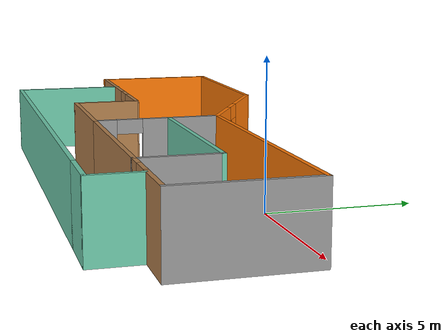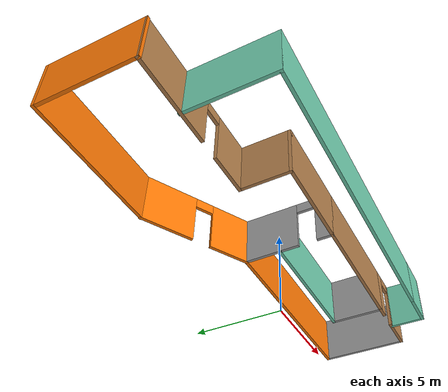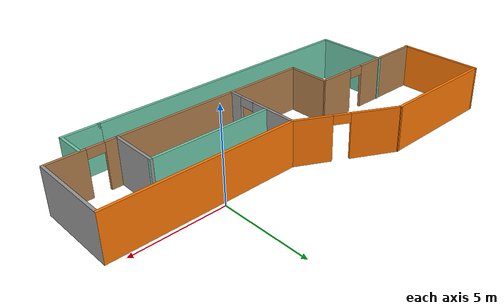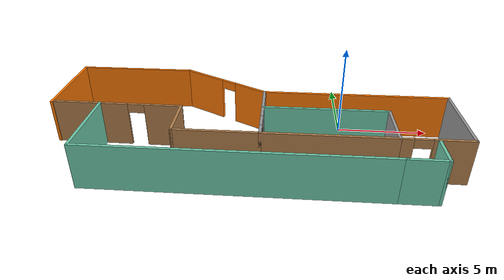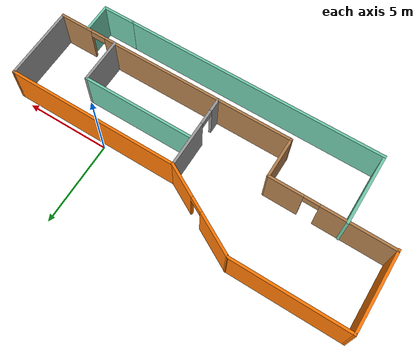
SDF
<?xml version='1.0'?>
<sdf version='1.6'>
  <model name='mybuilding'>
    <pose frame=''>-5.02052 -1.98139 0 0 -0 0</pose>
    <link name='Wall_0'>
      <collision name='Wall_0_Collision'>
        <geometry>
          <box>
            <size>4.75 0.15 2.5</size>
          </box>
        </geometry>
        <pose frame=''>0 0 1.25 0 -0 0</pose>
      </collision>
      <visual name='Wall_0_Visual'>
        <pose frame=''>0 0 1.25 0 -0 0</pose>
        <geometry>
          <box>
            <size>4.75 0.15 2.5</size>
          </box>
        </geometry>
        <material>
          <script>
            <uri>file://media/materials/scripts/gazebo.material</uri>
            <name>Gazebo/Grey</name>
          </script>
          <ambient>0.996078 0.47451 0.0196078 1</ambient>
        </material>
        <meta>
          <layer>0</layer>
        </meta>
      </visual>
      <pose frame=''>-10.7747 2.01571 0 0 0 -1.5708</pose>
    </link>
    <link name='Wall_1'>
      <pose frame=''>-7.22475 -0.28429 0 0 0 -0.008617</pose>
      <visual name='Wall_1_Visual_0'>
        <pose frame=''>-1.48771 0 1.25 0 -0 0</pose>
        <geometry>
          <box>
            <size>4.27457 0.15 2.5</size>
          </box>
        </geometry>
        <material>
          <script>
            <uri>file://media/materials/scripts/gazebo.material</uri>
            <name>Gazebo/Wood</name>
          </script>
          <ambient>1 1 1 1</ambient>
        </material>
        <meta>
          <layer>0</layer>
        </meta>
      </visual>
      <collision name='Wall_1_Collision_0'>
        <geometry>
          <box>
            <size>4.27457 0.15 2.5</size>
          </box>
        </geometry>
        <pose frame=''>-1.48771 0 1.25 0 -0 0</pose>
      </collision>
      <visual name='Wall_1_Visual_1'>
        <pose frame=''>2.58729 0 1.25 0 -0 0</pose>
        <geometry>
          <box>
            <size>2.07543 0.15 2.5</size>
          </box>
        </geometry>
        <material>
          <script>
            <uri>file://media/materials/scripts/gazebo.material</uri>
            <name>Gazebo/Wood</name>
          </script>
          <ambient>1 1 1 1</ambient>
        </material>
        <meta>
          <layer>0</layer>
        </meta>
      </visual>
      <collision name='Wall_1_Collision_1'>
        <geometry>
          <box>
            <size>2.07543 0.15 2.5</size>
          </box>
        </geometry>
        <pose frame=''>2.58729 0 1.25 0 -0 0</pose>
      </collision>
      <visual name='Wall_1_Visual_2'>
        <pose frame=''>1.09957 0 2.25 0 -0 0</pose>
        <geometry>
          <box>
            <size>0.9 0.15 0.5</size>
          </box>
        </geometry>
        <material>
          <script>
            <uri>file://media/materials/scripts/gazebo.material</uri>
            <name>Gazebo/Wood</name>
          </script>
          <ambient>1 1 1 1</ambient>
        </material>
        <meta>
          <layer>0</layer>
        </meta>
      </visual>
      <collision name='Wall_1_Collision_2'>
        <geometry>
          <box>
            <size>0.9 0.15 0.5</size>
          </box>
        </geometry>
        <pose frame=''>1.09957 0 2.25 0 -0 0</pose>
      </collision>
    </link>
    <link name='Wall_10'>
      <collision name='Wall_10_Collision'>
        <geometry>
          <box>
            <size>6.75 0.15 2.5</size>
          </box>
        </geometry>
        <pose frame=''>0 0 1.25 0 -0 0</pose>
      </collision>
      <visual name='Wall_10_Visual'>
        <pose frame=''>0 0 1.25 0 -0 0</pose>
        <geometry>
          <box>
            <size>6.75 0.15 2.5</size>
          </box>
        </geometry>
        <material>
          <script>
            <uri>file://media/materials/scripts/gazebo.material</uri>
            <name>Gazebo/Wood</name>
          </script>
          <ambient>1 1 1 1</ambient>
        </material>
        <meta>
          <layer>0</layer>
        </meta>
      </visual>
      <pose frame=''>3.97526 -2.66488 0 0 -0 0</pose>
    </link>
    <link name='Wall_11'>
      <collision name='Wall_11_Collision'>
        <geometry>
          <box>
            <size>2.75 0.15 2.5</size>
          </box>
        </geometry>
        <pose frame=''>0 0 1.25 0 -0 0</pose>
      </collision>
      <visual name='Wall_11_Visual'>
        <pose frame=''>0 0 1.25 0 -0 0</pose>
        <geometry>
          <box>
            <size>2.75 0.15 2.5</size>
          </box>
        </geometry>
        <material>
          <script>
            <uri>file://media/materials/scripts/gazebo.material</uri>
            <name>Gazebo/Grey</name>
          </script>
          <ambient>1 1 1 1</ambient>
        </material>
        <meta>
          <layer>0</layer>
        </meta>
      </visual>
      <pose frame=''>7.27525 -1.36488 0 0 -0 1.5708</pose>
    </link>
    <link name='Wall_12'>
      <collision name='Wall_12_Collision'>
        <geometry>
          <box>
            <size>6.75 0.15 2.5</size>
          </box>
        </geometry>
        <pose frame=''>0 0 1.25 0 -0 0</pose>
      </collision>
      <visual name='Wall_12_Visual'>
        <pose frame=''>0 0 1.25 0 -0 0</pose>
        <geometry>
          <box>
            <size>6.75 0.15 2.5</size>
          </box>
        </geometry>
        <material>
          <script>
            <uri>file://media/materials/scripts/gazebo.material</uri>
            <name>Gazebo/Grey</name>
          </script>
          <ambient>0.435294 0.796078 0.67451 1</ambient>
        </material>
        <meta>
          <layer>0</layer>
        </meta>
      </visual>
      <pose frame=''>3.97526 -0.064881 0 0 -0 3.14159</pose>
    </link>
    <link name='Wall_14'>
      <collision name='Wall_14_Collision'>
        <geometry>
          <box>
            <size>10.25 0.15 2.5</size>
          </box>
        </geometry>
        <pose frame=''>0 0 1.25 0 -0 0</pose>
      </collision>
      <visual name='Wall_14_Visual'>
        <pose frame=''>0 0 1.25 0 -0 0</pose>
        <geometry>
          <box>
            <size>10.25 0.15 2.5</size>
          </box>
        </geometry>
        <material>
          <script>
            <uri>file://media/materials/scripts/gazebo.material</uri>
            <name>Gazebo/Grey</name>
          </script>
          <ambient>0.996078 0.47451 0.0196078 1</ambient>
        </material>
        <meta>
          <layer>0</layer>
        </meta>
      </visual>
      <pose frame=''>5.72526 1.68512 0 0 -0 0</pose>
    </link>
    <link name='Wall_15'>
      <collision name='Wall_15_Collision'>
        <geometry>
          <box>
            <size>4.5 0.15 2.5</size>
          </box>
        </geometry>
        <pose frame=''>0 0 1.25 0 -0 0</pose>
      </collision>
      <visual name='Wall_15_Visual'>
        <pose frame=''>0 0 1.25 0 -0 0</pose>
        <geometry>
          <box>
            <size>4.5 0.15 2.5</size>
          </box>
        </geometry>
        <material>
          <script>
            <uri>file://media/materials/scripts/gazebo.material</uri>
            <name>Gazebo/Grey</name>
          </script>
          <ambient>1 1 1 1</ambient>
        </material>
        <meta>
          <layer>0</layer>
        </meta>
      </visual>
      <pose frame=''>10.7753 -0.489881 0 0 0 -1.5708</pose>
    </link>
    <link name='Wall_16'>
      <pose frame=''>9.02525 -2.66488 0 0 -0 3.14159</pose>
      <visual name='Wall_16_Visual_0'>
        <pose frame=''>-0.812242 0 1.25 0 -0 0</pose>
        <geometry>
          <box>
            <size>2.02552 0.15 2.5</size>
          </box>
        </geometry>
        <material>
          <script>
            <uri>file://media/materials/scripts/gazebo.material</uri>
            <name>Gazebo/Wood</name>
          </script>
          <ambient>1 1 1 1</ambient>
        </material>
        <meta>
          <layer>0</layer>
        </meta>
      </visual>
      <collision name='Wall_16_Collision_0'>
        <geometry>
          <box>
            <size>2.02552 0.15 2.5</size>
          </box>
        </geometry>
        <pose frame=''>-0.812242 0 1.25 0 -0 0</pose>
      </collision>
      <visual name='Wall_16_Visual_1'>
        <pose frame=''>1.46276 0 1.25 0 -0 0</pose>
        <geometry>
          <box>
            <size>0.724483 0.15 2.5</size>
          </box>
        </geometry>
        <material>
          <script>
            <uri>file://media/materials/scripts/gazebo.material</uri>
            <name>Gazebo/Wood</name>
          </script>
          <ambient>1 1 1 1</ambient>
        </material>
        <meta>
          <layer>0</layer>
        </meta>
      </visual>
      <collision name='Wall_16_Collision_1'>
        <geometry>
          <box>
            <size>0.724483 0.15 2.5</size>
          </box>
        </geometry>
        <pose frame=''>1.46276 0 1.25 0 -0 0</pose>
      </collision>
      <visual name='Wall_16_Visual_2'>
        <pose frame=''>0.650517 0 2.25 0 -0 0</pose>
        <geometry>
          <box>
            <size>0.9 0.15 0.5</size>
          </box>
        </geometry>
        <material>
          <script>
            <uri>file://media/materials/scripts/gazebo.material</uri>
            <name>Gazebo/Wood</name>
          </script>
          <ambient>1 1 1 1</ambient>
        </material>
        <meta>
          <layer>0</layer>
        </meta>
      </visual>
      <collision name='Wall_16_Collision_2'>
        <geometry>
          <box>
            <size>0.9 0.15 0.5</size>
          </box>
        </geometry>
        <pose frame=''>0.650517 0 2.25 0 -0 0</pose>
      </collision>
    </link>
    <link name='Wall_18'>
      <collision name='Wall_18_Collision'>
        <geometry>
          <box>
            <size>4.25 0.15 2.5</size>
          </box>
        </geometry>
        <pose frame=''>0 0 1.25 0 -0 0</pose>
      </collision>
      <visual name='Wall_18_Visual'>
        <pose frame=''>0 0 1.25 0 -0 0</pose>
        <geometry>
          <box>
            <size>4.25 0.15 2.5</size>
          </box>
        </geometry>
        <material>
          <script>
            <uri>file://media/materials/scripts/gazebo.material</uri>
            <name>Gazebo/Grey</name>
          </script>
          <ambient>0.435294 0.796078 0.67451 1</ambient>
        </material>
        <meta>
          <layer>0</layer>
        </meta>
      </visual>
      <pose frame=''>-8.11339 -2.29223 0 0 0 -1.5708</pose>
    </link>
    <link name='Wall_19'>
      <collision name='Wall_19_Collision'>
        <geometry>
          <box>
            <size>15.5 0.15 2.5</size>
          </box>
        </geometry>
        <pose frame=''>0 0 1.25 0 -0 0</pose>
      </collision>
      <visual name='Wall_19_Visual'>
        <pose frame=''>0 0 1.25 0 -0 0</pose>
        <geometry>
          <box>
            <size>15.5 0.15 2.5</size>
          </box>
        </geometry>
        <material>
          <script>
            <uri>file://media/materials/scripts/gazebo.material</uri>
            <name>Gazebo/Grey</name>
          </script>
          <ambient>0.435294 0.796078 0.67451 1</ambient>
        </material>
        <meta>
          <layer>0</layer>
        </meta>
      </visual>
      <pose frame=''>-0.438395 -4.34223 0 0 -0 0</pose>
    </link>
    <link name='Wall_2'>
      <collision name='Wall_2_Collision'>
        <geometry>
          <box>
            <size>2.5 0.15 2.5</size>
          </box>
        </geometry>
        <pose frame=''>0 0 1.25 0 -0 0</pose>
      </collision>
      <visual name='Wall_2_Visual'>
        <pose frame=''>0 0 1.25 0 -0 0</pose>
        <geometry>
          <box>
            <size>2.5 0.15 2.5</size>
          </box>
        </geometry>
        <material>
          <script>
            <uri>file://media/materials/scripts/gazebo.material</uri>
            <name>Gazebo/Wood</name>
          </script>
          <ambient>1 1 1 1</ambient>
        </material>
        <meta>
          <layer>0</layer>
        </meta>
      </visual>
      <pose frame=''>-3.67474 -1.48988 0 0 0 -1.5708</pose>
    </link>
    <link name='Wall_20'>
      <collision name='Wall_20_Collision'>
        <geometry>
          <box>
            <size>2 0.15 2.5</size>
          </box>
        </geometry>
        <pose frame=''>0 0 1.25 0 -0 0</pose>
      </collision>
      <visual name='Wall_20_Visual'>
        <pose frame=''>0 0 1.25 0 -0 0</pose>
        <geometry>
          <box>
            <size>2 0.15 2.5</size>
          </box>
        </geometry>
        <material>
          <script>
            <uri>file://media/materials/scripts/gazebo.material</uri>
            <name>Gazebo/Grey</name>
          </script>
          <ambient>0.435294 0.796078 0.67451 1</ambient>
        </material>
        <meta>
          <layer>0</layer>
        </meta>
      </visual>
      <pose frame=''>8.1616 -4.34223 0 0 -0 0</pose>
    </link>
    <link name='Wall_21'>
      <collision name='Wall_21_Collision'>
        <geometry>
          <box>
            <size>1.75 0.15 2.5</size>
          </box>
        </geometry>
        <pose frame=''>0 0 1.25 0 -0 0</pose>
      </collision>
      <visual name='Wall_21_Visual'>
        <pose frame=''>0 0 1.25 0 -0 0</pose>
        <geometry>
          <box>
            <size>1.75 0.15 2.5</size>
          </box>
        </geometry>
        <material>
          <script>
            <uri>file://media/materials/scripts/gazebo.material</uri>
            <name>Gazebo/Grey</name>
          </script>
          <ambient>0.435294 0.796078 0.67451 1</ambient>
        </material>
        <meta>
          <layer>0</layer>
        </meta>
      </visual>
      <pose frame=''>9.08661 -3.54223 0 0 -0 1.5708</pose>
    </link>
    <link name='Wall_3'>
      <collision name='Wall_3_Collision'>
        <geometry>
          <box>
            <size>4.5 0.15 2.5</size>
          </box>
        </geometry>
        <pose frame=''>0 0 1.25 0 -0 0</pose>
      </collision>
      <visual name='Wall_3_Visual'>
        <pose frame=''>0 0 1.25 0 -0 0</pose>
        <geometry>
          <box>
            <size>4.5 0.15 2.5</size>
          </box>
        </geometry>
        <material>
          <script>
            <uri>file://media/materials/scripts/gazebo.material</uri>
            <name>Gazebo/Wood</name>
          </script>
          <ambient>1 1 1 1</ambient>
        </material>
        <meta>
          <layer>0</layer>
        </meta>
      </visual>
      <pose frame=''>-1.49975 -2.66488 0 0 -0 0</pose>
    </link>
    <link name='Wall_4'>
      <pose frame=''>0.675256 -0.489881 0 0 -0 1.5708</pose>
      <visual name='Wall_4_Visual_0'>
        <pose frame=''>-1.83798 0 1.25 0 -0 0</pose>
        <geometry>
          <box>
            <size>0.824037 0.15 2.5</size>
          </box>
        </geometry>
        <material>
          <script>
            <uri>file://media/materials/scripts/gazebo.material</uri>
            <name>Gazebo/Grey</name>
          </script>
          <ambient>1 1 1 1</ambient>
        </material>
        <meta>
          <layer>0</layer>
        </meta>
      </visual>
      <collision name='Wall_4_Collision_0'>
        <geometry>
          <box>
            <size>0.824037 0.15 2.5</size>
          </box>
        </geometry>
        <pose frame=''>-1.83798 0 1.25 0 -0 0</pose>
      </collision>
      <visual name='Wall_4_Visual_1'>
        <pose frame=''>0.862019 0 1.25 0 -0 0</pose>
        <geometry>
          <box>
            <size>2.77596 0.15 2.5</size>
          </box>
        </geometry>
        <material>
          <script>
            <uri>file://media/materials/scripts/gazebo.material</uri>
            <name>Gazebo/Grey</name>
          </script>
          <ambient>1 1 1 1</ambient>
        </material>
        <meta>
          <layer>0</layer>
        </meta>
      </visual>
      <collision name='Wall_4_Collision_1'>
        <geometry>
          <box>
            <size>2.77596 0.15 2.5</size>
          </box>
        </geometry>
        <pose frame=''>0.862019 0 1.25 0 -0 0</pose>
      </collision>
      <visual name='Wall_4_Visual_2'>
        <pose frame=''>-0.975963 0 2.25 0 -0 0</pose>
        <geometry>
          <box>
            <size>0.9 0.15 0.5</size>
          </box>
        </geometry>
        <material>
          <script>
            <uri>file://media/materials/scripts/gazebo.material</uri>
            <name>Gazebo/Grey</name>
          </script>
          <ambient>1 1 1 1</ambient>
        </material>
        <meta>
          <layer>0</layer>
        </meta>
      </visual>
      <collision name='Wall_4_Collision_2'>
        <geometry>
          <box>
            <size>0.9 0.15 0.5</size>
          </box>
        </geometry>
        <pose frame=''>-0.975963 0 2.25 0 -0 0</pose>
      </collision>
    </link>
    <link name='Wall_5'>
      <pose frame=''>-1.71902 3.00026 0 0 -0 2.6393</pose>
      <visual name='Wall_5_Visual_0'>
        <pose frame=''>-1.76931 0 1.25 0 -0 0</pose>
        <geometry>
          <box>
            <size>2.07477 0.15 2.5</size>
          </box>
        </geometry>
        <material>
          <script>
            <uri>file://media/materials/scripts/gazebo.material</uri>
            <name>Gazebo/Grey</name>
          </script>
          <ambient>0.996078 0.47451 0.0196078 1</ambient>
        </material>
        <meta>
          <layer>0</layer>
        </meta>
      </visual>
      <collision name='Wall_5_Collision_0'>
        <geometry>
          <box>
            <size>2.07477 0.15 2.5</size>
          </box>
        </geometry>
        <pose frame=''>-1.76931 0 1.25 0 -0 0</pose>
      </collision>
      <visual name='Wall_5_Visual_1'>
        <pose frame=''>1.48739 0 1.25 0 -0 0</pose>
        <geometry>
          <box>
            <size>2.63861 0.15 2.5</size>
          </box>
        </geometry>
        <material>
          <script>
            <uri>file://media/materials/scripts/gazebo.material</uri>
            <name>Gazebo/Grey</name>
          </script>
          <ambient>0.996078 0.47451 0.0196078 1</ambient>
        </material>
        <meta>
          <layer>0</layer>
        </meta>
      </visual>
      <collision name='Wall_5_Collision_1'>
        <geometry>
          <box>
            <size>2.63861 0.15 2.5</size>
          </box>
        </geometry>
        <pose frame=''>1.48739 0 1.25 0 -0 0</pose>
      </collision>
      <visual name='Wall_5_Visual_2'>
        <pose frame=''>-0.281919 0 2.25 0 -0 0</pose>
        <geometry>
          <box>
            <size>0.9 0.15 0.5</size>
          </box>
        </geometry>
        <material>
          <script>
            <uri>file://media/materials/scripts/gazebo.material</uri>
            <name>Gazebo/Grey</name>
          </script>
          <ambient>0.996078 0.47451 0.0196078 1</ambient>
        </material>
        <meta>
          <layer>0</layer>
        </meta>
      </visual>
      <collision name='Wall_5_Collision_2'>
        <geometry>
          <box>
            <size>0.9 0.15 0.5</size>
          </box>
        </geometry>
        <pose frame=''>-0.281919 0 2.25 0 -0 0</pose>
      </collision>
    </link>
    <link name='Wall_8'>
      <collision name='Wall_8_Collision'>
        <geometry>
          <box>
            <size>6.81145 0.15 2.5</size>
          </box>
        </geometry>
        <pose frame=''>0 0 1.25 0 -0 0</pose>
      </collision>
      <visual name='Wall_8_Visual'>
        <pose frame=''>0 0 1.25 0 -0 0</pose>
        <geometry>
          <box>
            <size>6.81145 0.15 2.5</size>
          </box>
        </geometry>
        <material>
          <script>
            <uri>file://media/materials/scripts/gazebo.material</uri>
            <name>Gazebo/Grey</name>
          </script>
          <ambient>0.996078 0.47451 0.0196078 1</ambient>
        </material>
        <meta>
          <layer>0</layer>
        </meta>
      </visual>
      <pose frame=''>-7.44402 4.31555 0 0 0 -4.8e-05</pose>
    </link>
    <static>1</static>
  </model>
</sdf>
